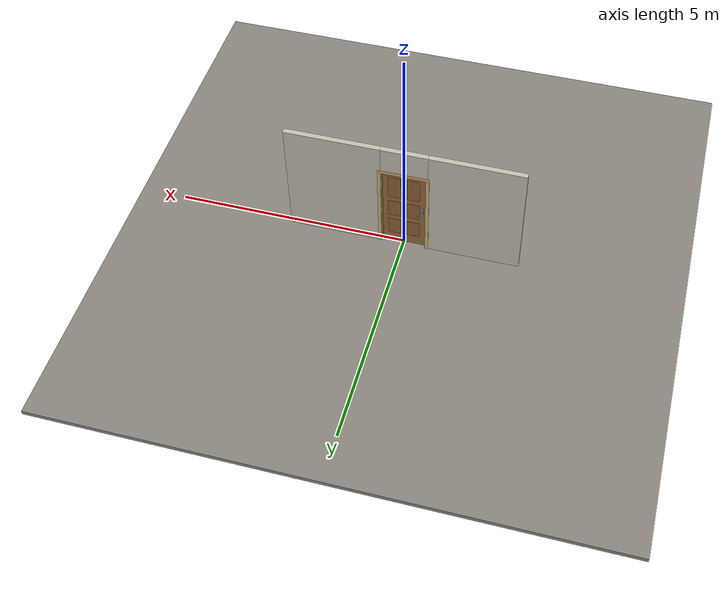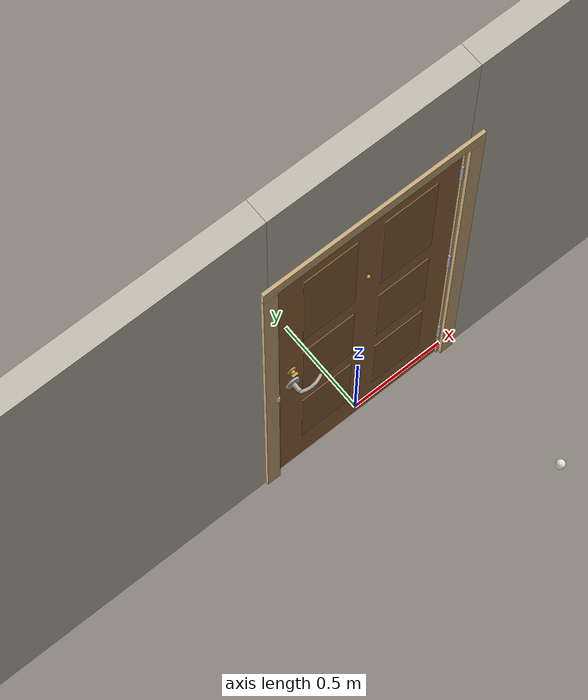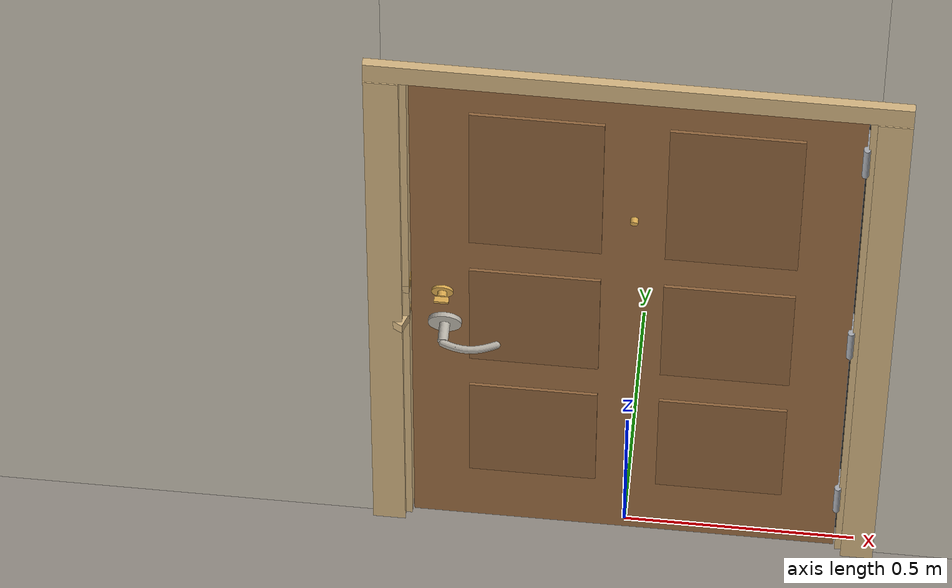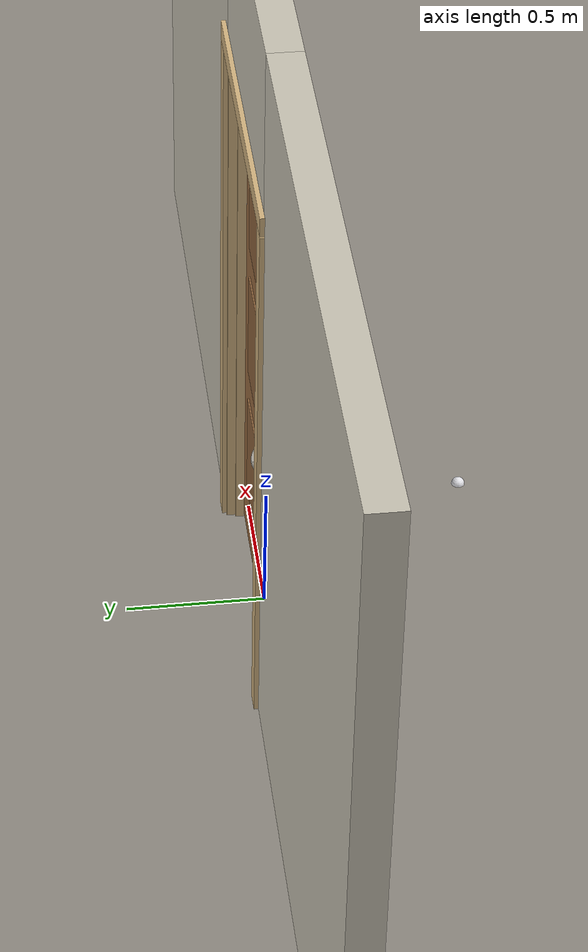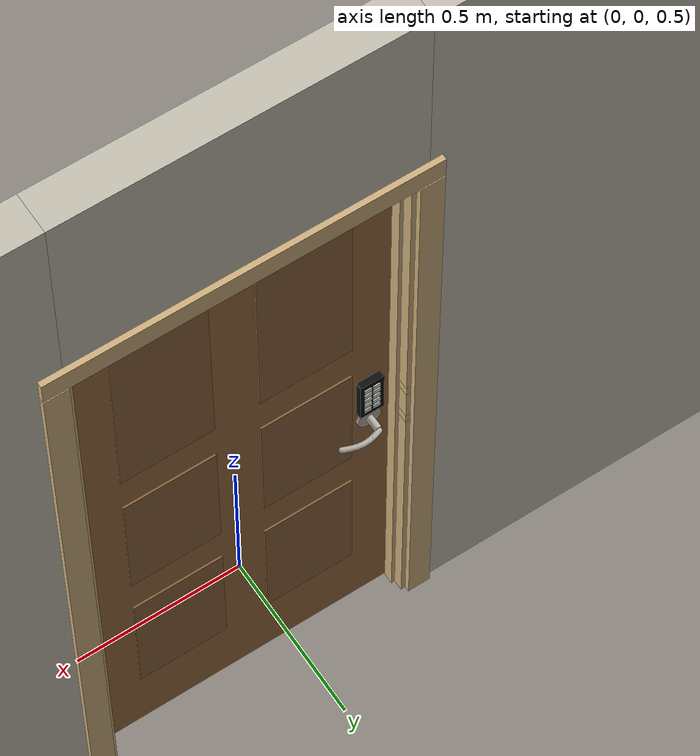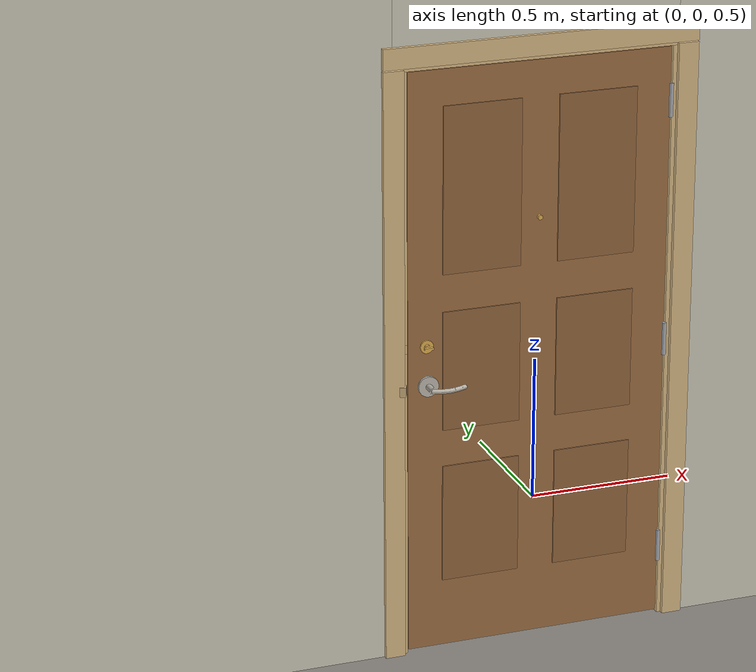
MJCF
<?xml version="1.0" ?>
<mujoco model="db0601_swing_single_full">
  <compiler angle="radian" meshdir="../../hardware" texturedir="../../textures" autolimits="true" inertiafromgeom="false"/>
  <option timestep="0.002" integrator="implicitfast" cone="elliptic" impratio="10" noslip_iterations="3">
    <flag multiccd="enable"/>
  </option>
  <size memory="16M"/>
  <default>
    <geom condim="4" solref="0.005 1" solimp="0.95 0.99 0.001"/>
    <joint solreflimit="0.005 1" solimplimit="0.95 0.99 0.001"/>
    <tendon solreflimit="0.005 1"/>
    <equality solref="0.002 1"/>
  </default>
  <visual>
    <headlight ambient="0.4 0.4 0.4" diffuse="0.7 0.7 0.7" specular="0.2 0.2 0.2"/>
    <quality shadowsize="4096"/>
    <map znear="0.01" zfar="60"/>
  </visual>
  <asset>
    <mesh name="hinge_e22b26c0c1" file="hinge_e22b26c0c1.obj"/>
    <mesh name="hinge_jamb_e1d088f8dc" file="hinge_jamb_e1d088f8dc.obj"/>
    <mesh name="keypad_body_3b2d063948" file="keypad_body_3b2d063948.obj"/>
    <mesh name="lever_a61139b160" file="lever_a61139b160.obj"/>
    <mesh name="peephole_f829311a59" file="peephole_f829311a59.obj"/>
    <mesh name="thumbturn_eb5c9899a3" file="thumbturn_eb5c9899a3.obj"/>
    <material name="mat_floor" rgba="0.55 0.53 0.5 1" specular="0.2" shininess="0.15" reflectance="0"/>
    <material name="mat_wall" rgba="0.78 0.76 0.7 1" specular="0.2" shininess="0.1" reflectance="0"/>
    <material name="mat_leaf" rgba="0.6 0.42 0.25 1" specular="0.2" shininess="0.6" reflectance="0"/>
    <material name="mat_leaf_panel" rgba="0.552 0.386 0.23 1" specular="0.2" shininess="0.6" reflectance="0"/>
    <material name="mat_hinge" rgba="0.65 0.66 0.68 1" specular="0.74" shininess="0.5" reflectance="0.36"/>
    <material name="mat_op_nickel_satin" rgba="0.72 0.7 0.66 1" specular="0.8" shininess="0.65" reflectance="0.4"/>
    <material name="mat_trim" rgba="0.85 0.66 0.3 1" specular="0.8" shininess="0.75" reflectance="0.4"/>
    <material name="mat_keypad" rgba="0.05 0.05 0.05 1" specular="0.38" shininess="0.3" reflectance="0.12"/>
    <material name="mat_key" rgba="0.85 0.85 0.82 1" specular="0.2" shininess="0.5" reflectance="0"/>
    <material name="mat_bolt" rgba="0.85 0.66 0.3 1" specular="0.8" shininess="0.75" reflectance="0.4"/>
    <material name="mat_deadbolt" rgba="0.85 0.66 0.3 1" specular="0.8" shininess="0.75" reflectance="0.4"/>
    <material name="mat_frame" rgba="0.82 0.7 0.5 1" specular="0.2" shininess="0.45" reflectance="0"/>
    <material name="mat_seal" rgba="0.1 0.1 0.1 1" specular="0.2" shininess="0.1" reflectance="0"/>
    <material name="mat_peephole" rgba="0.85 0.66 0.3 1" specular="0.8" shininess="0.75" reflectance="0.4"/>
    <material name="mat_stop" rgba="0.9 0.9 0.92 1" specular="0.8" shininess="0.9" reflectance="0.4"/>
    <texture name="skybox" type="skybox" builtin="gradient" rgb1="0.6 0.7 0.85" rgb2="0.9 0.92 0.95" width="256" height="256"/>
  </asset>
  <worldbody>
    <light name="sun" pos="1.5 -2.5 4" dir="-0.3 0.5 -0.8" directional="true" diffuse="0.8 0.8 0.8" specular="0.3 0.3 0.3" castshadow="true"/>
    <light name="fill" pos="-1.5 2.5 3" dir="0.3 -0.5 -0.7" directional="true" diffuse="0.35 0.35 0.4" castshadow="false"/>
    <camera name="robot_view" pos="0 -2.513687 1.734312" xyaxes="1 0 0 0 0.26963 0.962964" fovy="52"/>
    <camera name="far_view" pos="0 2.570688 1.734312" xyaxes="-1 0 0 0 -0.26963 0.962964" fovy="52"/>
    <camera name="iso" pos="-1.932062 -2.106937 2.141063" xyaxes="0.741536 -0.670913 0 0.242917 0.268487 0.932151" fovy="46"/>
    <camera name="detail_handle" pos="-0.1169 -0.877 1.245" xyaxes="0.97561 0.219512 0 -0.070934 0.315262 0.94635" fovy="38"/>
    <geom name="floor" type="box" size="6 6 0.05" pos="0 0 -0.05" material="mat_floor" group="0" contype="1" conaffinity="1" friction="0.8 0.005 0.0001" density="2400"/>
    <geom name="wall_left" type="box" size="0.99525 0.0575 1.35" pos="-1.50475 0.0285 1.35" material="mat_wall" group="0" contype="1" conaffinity="1" friction="0.6 0.005 0.0001" density="800"/>
    <geom name="wall_right" type="box" size="1.01025 0.0575 1.35" pos="1.48975 0.0285 1.35" material="mat_wall" group="0" contype="1" conaffinity="1" friction="0.6 0.005 0.0001" density="800"/>
    <geom name="wall_header" type="box" size="0.4945 0.0575 0.303" pos="-0.015 0.0285 2.397" material="mat_wall" group="0" contype="1" conaffinity="1" friction="0.6 0.005 0.0001" density="800"/>
    <geom name="hinge_0_jamb" type="mesh" mesh="hinge_jamb_e1d088f8dc" pos="0.4575 -0.029 0.259" quat="0 0 1 0" material="mat_hinge" group="1" contype="0" conaffinity="0" density="7850"/>
    <geom name="hinge_1_jamb" type="mesh" mesh="hinge_jamb_e1d088f8dc" pos="0.4575 -0.029 1.025" quat="0 0 1 0" material="mat_hinge" group="1" contype="0" conaffinity="0" density="7850"/>
    <geom name="hinge_2_jamb" type="mesh" mesh="hinge_jamb_e1d088f8dc" pos="0.4575 -0.029 1.861" quat="0 0 1 0" material="mat_hinge" group="1" contype="0" conaffinity="0" density="7850"/>
    <geom name="leaf_deadbolt_strike_b" type="box" size="0.0155 0.003 0.0005" pos="-0.46 0 1.0865" quat="0.5 0.5 0.5 0.5" material="mat_deadbolt" group="1" contype="0" conaffinity="0" density="7800"/>
    <geom name="leaf_deadbolt_strike_l" type="box" size="0.003 0.0155 0.0005" pos="-0.46 -0.0125 1.105" quat="0.5 0.5 0.5 0.5" material="mat_deadbolt" group="1" contype="0" conaffinity="0" density="7800"/>
    <geom name="leaf_deadbolt_strike_t" type="box" size="0.0155 0.003 0.0005" pos="-0.46 0 1.1235" quat="0.5 0.5 0.5 0.5" material="mat_deadbolt" group="1" contype="0" conaffinity="0" density="7800"/>
    <geom name="leaf_deadbolt_strike_r" type="box" size="0.003 0.0155 0.0005" pos="-0.46 0.0125 1.105" quat="0.5 0.5 0.5 0.5" material="mat_deadbolt" group="1" contype="0" conaffinity="0" density="7800"/>
    <geom name="jamb_hinge" type="box" size="0.0095 0.0575 1.0225" pos="0.47 0.0285 1.0225" material="mat_frame" group="0" contype="1" conaffinity="1" friction="0.6 0.005 0.0001" density="400"/>
    <geom name="strike_965_wall_n" type="box" size="0.0245 0.039075 0.0167" pos="-0.485 0.046925 0.965" material="mat_frame" group="0" contype="1" conaffinity="1" friction="0.6 0.005 0.0001" density="400"/>
    <geom name="strike_965_wall_p" type="box" size="0.0245 0.008 0.0167" pos="-0.485 -0.01585 0.965" material="mat_frame" group="0" contype="1" conaffinity="1" friction="0.6 0.005 0.0001" density="400"/>
    <geom name="strike_965_ramp" type="box" size="0.0245 0.01649 0.0167" pos="-0.489636 -0.028673 0.965" quat="0.977148 0 0 -0.212558" material="mat_frame" group="0" contype="1" conaffinity="1" friction="0.12 0.005 0.0001" density="400"/>
    <geom name="strike_965_back" type="box" size="0.01615 0.00785 0.0167" pos="-0.49335 0 0.965" material="mat_frame" group="0" contype="1" conaffinity="1" friction="0.6 0.005 0.0001" density="400"/>
    <geom name="strike_1105_wall_n" type="box" size="0.0245 0.03825 0.0155" pos="-0.485 0.04775 1.105" material="mat_frame" group="0" contype="1" conaffinity="1" friction="0.6 0.005 0.0001" density="400"/>
    <geom name="strike_1105_wall_p" type="box" size="0.0245 0.00975 0.0155" pos="-0.485 -0.01925 1.105" material="mat_frame" group="0" contype="1" conaffinity="1" friction="0.6 0.005 0.0001" density="400"/>
    <geom name="strike_1105_back" type="box" size="0.0098 0.0095 0.0155" pos="-0.4997 0 1.105" material="mat_frame" group="0" contype="1" conaffinity="1" friction="0.6 0.005 0.0001" density="400"/>
    <geom name="jamb_strike_0" type="box" size="0.0245 0.0575 0.47415" pos="-0.485 0.0285 0.47415" material="mat_frame" group="0" contype="1" conaffinity="1" friction="0.6 0.005 0.0001" density="400"/>
    <geom name="jamb_strike_1" type="box" size="0.0245 0.0575 0.0539" pos="-0.485 0.0285 1.0356" material="mat_frame" group="0" contype="1" conaffinity="1" friction="0.6 0.005 0.0001" density="400"/>
    <geom name="jamb_strike_2" type="box" size="0.0245 0.0575 0.46225" pos="-0.485 0.0285 1.58275" material="mat_frame" group="0" contype="1" conaffinity="1" friction="0.6 0.005 0.0001" density="400"/>
    <geom name="jamb_head" type="box" size="0.4945 0.0575 0.0095" pos="-0.015 0.0285 2.0545" material="mat_frame" group="0" contype="1" conaffinity="1" friction="0.6 0.005 0.0001" density="400"/>
    <geom name="head_stud" type="box" size="0.4945 0.0575 0.015" pos="-0.015 0.0285 2.079" material="mat_wall" group="0" contype="1" conaffinity="1" friction="0.6 0.005 0.0001" density="500"/>
    <geom name="stop_hinge" type="box" size="0.0055 0.016 1.0225" pos="0.455 0.0385 1.0225" material="mat_frame" group="0" contype="1" conaffinity="1" friction="0.6 0.005 0.0001" density="400"/>
    <geom name="stop_strike" type="box" size="0.0055 0.016 1.0225" pos="-0.455 0.0385 1.0225" material="mat_frame" group="0" contype="1" conaffinity="1" friction="0.6 0.005 0.0001" density="400"/>
    <geom name="stop_head" type="box" size="0.4605 0.016 0.0055" pos="0 0.0385 2.0395" material="mat_frame" group="0" contype="1" conaffinity="1" friction="0.6 0.005 0.0001" density="400"/>
    <geom name="seal_hinge" type="box" size="0.004 0.002 1.0225" pos="0.4575 0.024 1.0225" material="mat_seal" group="1" contype="0" conaffinity="0" density="1100"/>
    <geom name="seal_strike" type="box" size="0.004 0.002 1.0225" pos="-0.4575 0.024 1.0225" material="mat_seal" group="1" contype="0" conaffinity="0" density="1100"/>
    <geom name="seal_head" type="box" size="0.4405 0.002 0.008" pos="0 0.024 2.033" material="mat_seal" group="1" contype="0" conaffinity="0" density="1100"/>
    <geom name="casing_l_n" type="box" size="0.035 0.008 1.032" pos="-0.5095 -0.037 1.0225" material="mat_frame" group="2" contype="0" conaffinity="0" density="400"/>
    <geom name="casing_r_n" type="box" size="0.035 0.008 1.032" pos="0.5095 -0.037 1.0225" material="mat_frame" group="2" contype="0" conaffinity="0" density="400"/>
    <geom name="casing_h_n" type="box" size="0.5445 0.008 0.035" pos="0 -0.037 2.094" material="mat_frame" group="2" contype="0" conaffinity="0" density="400"/>
    <geom name="casing_l_p" type="box" size="0.035 0.008 1.032" pos="-0.5095 0.094 1.0225" material="mat_frame" group="2" contype="0" conaffinity="0" density="400"/>
    <geom name="casing_r_p" type="box" size="0.035 0.008 1.032" pos="0.5095 0.094 1.0225" material="mat_frame" group="2" contype="0" conaffinity="0" density="400"/>
    <geom name="casing_h_p" type="box" size="0.5445 0.008 0.035" pos="0 0.094 2.094" material="mat_frame" group="2" contype="0" conaffinity="0" density="400"/>
    <geom name="floor_stop_dome" type="sphere" size="0.025" pos="0.545135 -0.801201 0" material="mat_stop" group="0" contype="1" conaffinity="1" friction="0.6 0.005 0.0001" density="7000"/>
    <site name="approach_point" pos="0 -1.5 0" quat="1 0 0 0" size="0.05" rgba="0.2 0.9 0.2 0.5" group="4"/>
    <site name="goal_point" pos="0 1.5 0" quat="1 0 0 0" size="0.05" rgba="0.2 0.9 0.2 0.5" group="4"/>
    <site name="door_plane_center" pos="0 0 1.0225" quat="1 0 0 0" size="0.02" rgba="0.2 0.9 0.2 0.5" group="4"/>
    <body name="leaf" pos="0.4605 0 0">
      <inertial pos="-0.457136 -0.000001 1.025971" mass="55.270219" quat="0.500674 0.499245 -0.500747 0.499331" diaginertia="3.996312931 18.932883605 22.91004662"/>
      <joint name="leaf_hinge" type="hinge" axis="0 0 1" pos="-0.003 -0.029 0" limited="true" range="0 1.658063" solreflimit="0.02 1" damping="0.30611" frictionloss="6.791938" armature="0.02"/>
      <geom name="leaf_slab" type="box" size="0.457 0.022 1.016" pos="-0.46 0 1.025" material="mat_leaf" group="0" contype="1" conaffinity="1" friction="0.3 0.005 0.0001" density="1"/>
      <geom name="leaf_panel_0_n" type="box" size="0.13573 0.003 0.209032" pos="-0.25927 -0.025 0.461552" material="mat_leaf_panel" group="1" contype="0" conaffinity="0" density="1"/>
      <geom name="leaf_panel_0_p" type="box" size="0.13573 0.003 0.209032" pos="-0.25927 0.025 0.461552" material="mat_leaf_panel" group="1" contype="0" conaffinity="0" density="1"/>
      <geom name="leaf_panel_1_n" type="box" size="0.13573 0.003 0.209032" pos="-0.66073 -0.025 0.461552" material="mat_leaf_panel" group="1" contype="0" conaffinity="0" density="1"/>
      <geom name="leaf_panel_1_p" type="box" size="0.13573 0.003 0.209032" pos="-0.66073 0.025 0.461552" material="mat_leaf_panel" group="1" contype="0" conaffinity="0" density="1"/>
      <geom name="leaf_panel_2_n" type="box" size="0.13573 0.003 0.209032" pos="-0.25927 -0.025 1.009616" material="mat_leaf_panel" group="1" contype="0" conaffinity="0" density="1"/>
      <geom name="leaf_panel_2_p" type="box" size="0.13573 0.003 0.209032" pos="-0.25927 0.025 1.009616" material="mat_leaf_panel" group="1" contype="0" conaffinity="0" density="1"/>
      <geom name="leaf_panel_3_n" type="box" size="0.13573 0.003 0.209032" pos="-0.66073 -0.025 1.009616" material="mat_leaf_panel" group="1" contype="0" conaffinity="0" density="1"/>
      <geom name="leaf_panel_3_p" type="box" size="0.13573 0.003 0.209032" pos="-0.66073 0.025 1.009616" material="mat_leaf_panel" group="1" contype="0" conaffinity="0" density="1"/>
      <geom name="leaf_panel_4_n" type="box" size="0.13573 0.003 0.285376" pos="-0.25927 -0.025 1.634024" material="mat_leaf_panel" group="1" contype="0" conaffinity="0" density="1"/>
      <geom name="leaf_panel_4_p" type="box" size="0.13573 0.003 0.285376" pos="-0.25927 0.025 1.634024" material="mat_leaf_panel" group="1" contype="0" conaffinity="0" density="1"/>
      <geom name="leaf_panel_5_n" type="box" size="0.13573 0.003 0.285376" pos="-0.66073 -0.025 1.634024" material="mat_leaf_panel" group="1" contype="0" conaffinity="0" density="1"/>
      <geom name="leaf_panel_5_p" type="box" size="0.13573 0.003 0.285376" pos="-0.66073 0.025 1.634024" material="mat_leaf_panel" group="1" contype="0" conaffinity="0" density="1"/>
      <geom name="hinge_0" type="mesh" mesh="hinge_e22b26c0c1" pos="-0.003 -0.029 0.259" quat="0 0 1 0" material="mat_hinge" group="1" contype="0" conaffinity="0" density="7850"/>
      <geom name="hinge_1" type="mesh" mesh="hinge_e22b26c0c1" pos="-0.003 -0.029 1.025" quat="0 0 1 0" material="mat_hinge" group="1" contype="0" conaffinity="0" density="7850"/>
      <geom name="hinge_2" type="mesh" mesh="hinge_e22b26c0c1" pos="-0.003 -0.029 1.861" quat="0 0 1 0" material="mat_hinge" group="1" contype="0" conaffinity="0" density="7850"/>
      <geom name="leaf_keypad_body" type="mesh" mesh="keypad_body_3b2d063948" pos="-0.847 0.022 1.085" quat="0 0 0.707107 0.707107" material="mat_keypad" group="0" contype="1" conaffinity="1" friction="0.6 0.005 0.0001" density="2000"/>
      <geom name="leaf_latch_bolt_faceplate" type="box" size="0.0006 0.01235 0.0267" pos="-0.9164 0 0.965" material="mat_bolt" group="1" contype="0" conaffinity="0" density="8500"/>
      <geom name="leaf_deadbolt_faceplate" type="box" size="0.0006 0.014 0.0245" pos="-0.9164 0 1.105" material="mat_deadbolt" group="1" contype="0" conaffinity="0" density="8500"/>
      <geom name="peephole" type="mesh" mesh="peephole_f829311a59" pos="-0.46 -0.022 1.509" quat="0 0 -0.707107 0.707107" material="mat_peephole" group="2" contype="0" conaffinity="0" density="8500"/>
      <site name="leaf_edge_mid" pos="-0.917 0 1.016" quat="1 0 0 0" size="0.02" rgba="0.2 0.9 0.2 0.5" group="4"/>
      <body name="leaf_handle" pos="-0.847 0 0.965">
        <inertial pos="0.023482 0 0" mass="0.873269" quat="0.707107 0 0 -0.707107" diaginertia="0.001231078 0.003255488 0.004320455"/>
        <joint name="leaf_handle_hinge" type="hinge" axis="0 1 0" limited="true" range="0 0.87" damping="0.216449" frictionloss="0.043602" stiffness="1" springref="-0.375569" armature="0.01"/>
        <geom name="leaf_handle_spindle" type="cylinder" size="0.006 0.03" pos="0 0 0" quat="0.707107 -0.707107 0 0" material="mat_op_nickel_satin" group="1" contype="0" conaffinity="0" density="7850"/>
        <geom name="leaf_handle_lever_n" type="mesh" mesh="lever_a61139b160" pos="0 -0.022 0" quat="0 0 -0.707107 0.707107" material="mat_op_nickel_satin" group="1" contype="0" conaffinity="0" density="3000"/>
        <geom name="leaf_handle_lever_col_n" type="capsule" size="0.008 0.048" pos="0.056 -0.077 0" quat="0.707107 0 0.707107 0" material="mat_op_nickel_satin" group="3" contype="1" conaffinity="1" rgba="0.8 0.3 0.3 0.25" friction="0.7 0.01 0.0001" density="3000"/>
        <geom name="leaf_handle_hub_col_n" type="cylinder" size="0.012 0.022" pos="0 -0.052 0" quat="0.707107 -0.707107 0 0" material="mat_op_nickel_satin" group="3" contype="1" conaffinity="1" rgba="0.8 0.3 0.3 0.25" friction="0.6 0.005 0.0001" density="3000"/>
        <geom name="leaf_handle_lever_p" type="mesh" mesh="lever_a61139b160" pos="0 0.022 0" quat="0 0 0.707107 0.707107" material="mat_op_nickel_satin" group="1" contype="0" conaffinity="0" density="3000"/>
        <geom name="leaf_handle_lever_col_p" type="capsule" size="0.008 0.048" pos="0.056 0.077 0" quat="0.707107 0 0.707107 0" material="mat_op_nickel_satin" group="3" contype="1" conaffinity="1" rgba="0.8 0.3 0.3 0.25" friction="0.7 0.01 0.0001" density="3000"/>
        <geom name="leaf_handle_hub_col_p" type="cylinder" size="0.012 0.022" pos="0 0.052 0" quat="0.707107 -0.707107 0 0" material="mat_op_nickel_satin" group="3" contype="1" conaffinity="1" rgba="0.8 0.3 0.3 0.25" friction="0.6 0.005 0.0001" density="3000"/>
        <site name="leaf_handle_grip_n" pos="0.0896 -0.077 0" quat="1 0 0 0" size="0.012" rgba="0.2 0.9 0.2 0.5" group="4"/>
        <site name="leaf_handle_grip_p" pos="0.0896 0.077 0" quat="1 0 0 0" size="0.012" rgba="0.2 0.9 0.2 0.5" group="4"/>
      </body>
      <body name="leaf_keypad_key_1" pos="-0.834 0.042 1.133">
        <inertial pos="0 0.0015 0" mass="0.001008" quat="0 0 0.707107 0.707107" diaginertia="0.000000017 0.000000034 0.00000005"/>
        <joint name="leaf_keypad_key_1_slide" type="slide" axis="0 -1 0" limited="true" range="0 0.0015" damping="14" frictionloss="0.05" stiffness="1000" springref="-0.0015" armature="0.1"/>
        <geom name="leaf_keypad_key_1_geom" type="box" size="0.01 0.0015 0.007" pos="0 0.0015 0" material="mat_key" group="0" contype="1" conaffinity="1" friction="0.6 0.005 0.0001" density="1200"/>
        <site name="leaf_keypad_key_1_press" pos="0 0.005 0" quat="1 0 0 0" size="0.008" rgba="0.2 0.9 0.2 0.5" group="4"/>
      </body>
      <body name="leaf_keypad_key_2" pos="-0.86 0.042 1.133">
        <inertial pos="0 0.0015 0" mass="0.001008" quat="0 0 0.707107 0.707107" diaginertia="0.000000017 0.000000034 0.00000005"/>
        <joint name="leaf_keypad_key_2_slide" type="slide" axis="0 -1 0" limited="true" range="0 0.0015" damping="14" frictionloss="0.05" stiffness="1000" springref="-0.0015" armature="0.1"/>
        <geom name="leaf_keypad_key_2_geom" type="box" size="0.01 0.0015 0.007" pos="0 0.0015 0" material="mat_key" group="0" contype="1" conaffinity="1" friction="0.6 0.005 0.0001" density="1200"/>
        <site name="leaf_keypad_key_2_press" pos="0 0.005 0" quat="1 0 0 0" size="0.008" rgba="0.2 0.9 0.2 0.5" group="4"/>
      </body>
      <body name="leaf_keypad_key_3" pos="-0.834 0.042 1.109">
        <inertial pos="0 0.0015 0" mass="0.001008" quat="0 0 0.707107 0.707107" diaginertia="0.000000017 0.000000034 0.00000005"/>
        <joint name="leaf_keypad_key_3_slide" type="slide" axis="0 -1 0" limited="true" range="0 0.0015" damping="14" frictionloss="0.05" stiffness="1000" springref="-0.0015" armature="0.1"/>
        <geom name="leaf_keypad_key_3_geom" type="box" size="0.01 0.0015 0.007" pos="0 0.0015 0" material="mat_key" group="0" contype="1" conaffinity="1" friction="0.6 0.005 0.0001" density="1200"/>
        <site name="leaf_keypad_key_3_press" pos="0 0.005 0" quat="1 0 0 0" size="0.008" rgba="0.2 0.9 0.2 0.5" group="4"/>
      </body>
      <body name="leaf_keypad_key_4" pos="-0.86 0.042 1.109">
        <inertial pos="0 0.0015 0" mass="0.001008" quat="0 0 0.707107 0.707107" diaginertia="0.000000017 0.000000034 0.00000005"/>
        <joint name="leaf_keypad_key_4_slide" type="slide" axis="0 -1 0" limited="true" range="0 0.0015" damping="14" frictionloss="0.05" stiffness="1000" springref="-0.0015" armature="0.1"/>
        <geom name="leaf_keypad_key_4_geom" type="box" size="0.01 0.0015 0.007" pos="0 0.0015 0" material="mat_key" group="0" contype="1" conaffinity="1" friction="0.6 0.005 0.0001" density="1200"/>
        <site name="leaf_keypad_key_4_press" pos="0 0.005 0" quat="1 0 0 0" size="0.008" rgba="0.2 0.9 0.2 0.5" group="4"/>
      </body>
      <body name="leaf_keypad_key_5" pos="-0.834 0.042 1.085">
        <inertial pos="0 0.0015 0" mass="0.001008" quat="0 0 0.707107 0.707107" diaginertia="0.000000017 0.000000034 0.00000005"/>
        <joint name="leaf_keypad_key_5_slide" type="slide" axis="0 -1 0" limited="true" range="0 0.0015" damping="14" frictionloss="0.05" stiffness="1000" springref="-0.0015" armature="0.1"/>
        <geom name="leaf_keypad_key_5_geom" type="box" size="0.01 0.0015 0.007" pos="0 0.0015 0" material="mat_key" group="0" contype="1" conaffinity="1" friction="0.6 0.005 0.0001" density="1200"/>
        <site name="leaf_keypad_key_5_press" pos="0 0.005 0" quat="1 0 0 0" size="0.008" rgba="0.2 0.9 0.2 0.5" group="4"/>
      </body>
      <body name="leaf_keypad_key_6" pos="-0.86 0.042 1.085">
        <inertial pos="0 0.0015 0" mass="0.001008" quat="0 0 0.707107 0.707107" diaginertia="0.000000017 0.000000034 0.00000005"/>
        <joint name="leaf_keypad_key_6_slide" type="slide" axis="0 -1 0" limited="true" range="0 0.0015" damping="14" frictionloss="0.05" stiffness="1000" springref="-0.0015" armature="0.1"/>
        <geom name="leaf_keypad_key_6_geom" type="box" size="0.01 0.0015 0.007" pos="0 0.0015 0" material="mat_key" group="0" contype="1" conaffinity="1" friction="0.6 0.005 0.0001" density="1200"/>
        <site name="leaf_keypad_key_6_press" pos="0 0.005 0" quat="1 0 0 0" size="0.008" rgba="0.2 0.9 0.2 0.5" group="4"/>
      </body>
      <body name="leaf_keypad_key_7" pos="-0.834 0.042 1.061">
        <inertial pos="0 0.0015 0" mass="0.001008" quat="0 0 0.707107 0.707107" diaginertia="0.000000017 0.000000034 0.00000005"/>
        <joint name="leaf_keypad_key_7_slide" type="slide" axis="0 -1 0" limited="true" range="0 0.0015" damping="14" frictionloss="0.05" stiffness="1000" springref="-0.0015" armature="0.1"/>
        <geom name="leaf_keypad_key_7_geom" type="box" size="0.01 0.0015 0.007" pos="0 0.0015 0" material="mat_key" group="0" contype="1" conaffinity="1" friction="0.6 0.005 0.0001" density="1200"/>
        <site name="leaf_keypad_key_7_press" pos="0 0.005 0" quat="1 0 0 0" size="0.008" rgba="0.2 0.9 0.2 0.5" group="4"/>
      </body>
      <body name="leaf_keypad_key_8" pos="-0.86 0.042 1.061">
        <inertial pos="0 0.0015 0" mass="0.001008" quat="0 0 0.707107 0.707107" diaginertia="0.000000017 0.000000034 0.00000005"/>
        <joint name="leaf_keypad_key_8_slide" type="slide" axis="0 -1 0" limited="true" range="0 0.0015" damping="14" frictionloss="0.05" stiffness="1000" springref="-0.0015" armature="0.1"/>
        <geom name="leaf_keypad_key_8_geom" type="box" size="0.01 0.0015 0.007" pos="0 0.0015 0" material="mat_key" group="0" contype="1" conaffinity="1" friction="0.6 0.005 0.0001" density="1200"/>
        <site name="leaf_keypad_key_8_press" pos="0 0.005 0" quat="1 0 0 0" size="0.008" rgba="0.2 0.9 0.2 0.5" group="4"/>
      </body>
      <body name="leaf_keypad_key_9" pos="-0.834 0.042 1.037">
        <inertial pos="0 0.0015 0" mass="0.001008" quat="0 0 0.707107 0.707107" diaginertia="0.000000017 0.000000034 0.00000005"/>
        <joint name="leaf_keypad_key_9_slide" type="slide" axis="0 -1 0" limited="true" range="0 0.0015" damping="14" frictionloss="0.05" stiffness="1000" springref="-0.0015" armature="0.1"/>
        <geom name="leaf_keypad_key_9_geom" type="box" size="0.01 0.0015 0.007" pos="0 0.0015 0" material="mat_key" group="0" contype="1" conaffinity="1" friction="0.6 0.005 0.0001" density="1200"/>
        <site name="leaf_keypad_key_9_press" pos="0 0.005 0" quat="1 0 0 0" size="0.008" rgba="0.2 0.9 0.2 0.5" group="4"/>
      </body>
      <body name="leaf_keypad_key_0" pos="-0.86 0.042 1.037">
        <inertial pos="0 0.0015 0" mass="0.001008" quat="0 0 0.707107 0.707107" diaginertia="0.000000017 0.000000034 0.00000005"/>
        <joint name="leaf_keypad_key_0_slide" type="slide" axis="0 -1 0" limited="true" range="0 0.0015" damping="14" frictionloss="0.05" stiffness="1000" springref="-0.0015" armature="0.1"/>
        <geom name="leaf_keypad_key_0_geom" type="box" size="0.01 0.0015 0.007" pos="0 0.0015 0" material="mat_key" group="0" contype="1" conaffinity="1" friction="0.6 0.005 0.0001" density="1200"/>
        <site name="leaf_keypad_key_0_press" pos="0 0.005 0" quat="1 0 0 0" size="0.008" rgba="0.2 0.9 0.2 0.5" group="4"/>
      </body>
      <body name="leaf_latch_bolt" pos="-0.917 0 0.965">
        <inertial pos="0.00865 0 0" mass="0.041419" quat="0.92388 0.382683 0 0" diaginertia="0.000000798 0.000005598 0.000005598"/>
        <joint name="leaf_latch_bolt_slide" type="slide" axis="1 0 0" limited="true" range="0 0.0127" damping="2" frictionloss="0.3" stiffness="300" springref="-0.008333" armature="0.1"/>
        <geom name="leaf_latch_bolt_capsule" type="capsule" size="0.00635 0.015" pos="0.00865 0 0" quat="0.707107 0 -0.707107 0" material="mat_bolt" group="0" contype="1" conaffinity="1" friction="0.2 0.005 0.0001" density="8500"/>
      </body>
      <body name="leaf_deadbolt" pos="-0.917 0 1.105">
        <inertial pos="0.0277 0 0" mass="0.18836" quat="0 0 0.707107 0.707107" diaginertia="0.000013829 0.000052194 0.000057986"/>
        <joint name="leaf_deadbolt_slide" type="slide" axis="1 0 0" limited="true" range="0 0.0254" damping="5" frictionloss="1.5" armature="0.1" ref="0.0254"/>
        <geom name="leaf_deadbolt_box" type="box" size="0.0277 0.008 0.0125" pos="0.0277 0 0" material="mat_deadbolt" group="0" contype="1" conaffinity="1" friction="0.3 0.005 0.0001" density="8500"/>
      </body>
      <body name="leaf_deadbolt_thumbturn" pos="-0.852 -0.022 1.105">
        <inertial pos="0 -0.012928 0" mass="0.178946" quat="0.707107 0.000001 0.000001 0.707107" diaginertia="0.000026045 0.000026215 0.000032438"/>
        <joint name="leaf_deadbolt_thumbturn_hinge" type="hinge" axis="0 1 0" limited="true" range="0 1.5708" damping="0.05" frictionloss="0.3" armature="0.005" ref="1.5708"/>
        <geom name="leaf_deadbolt_thumbturn_mesh" type="mesh" mesh="thumbturn_eb5c9899a3" pos="0 0 0" quat="0.500001 0.500001 -0.499999 0.499999" material="mat_deadbolt" group="0" contype="1" conaffinity="1" friction="0.6 0.005 0.0001" density="7100"/>
        <geom name="leaf_deadbolt_thumbturn_col" type="box" size="0.006 0.012 0.016" pos="0 -0.02 0" quat="0.707105 0 0.707108 0" material="mat_deadbolt" group="3" contype="1" conaffinity="1" rgba="0.8 0.3 0.3 0.25" friction="0.6 0.005 0.0001" density="7100"/>
      </body>
    </body>
  </worldbody>
  <tendon>
    <fixed name="leaf_latch_bolt_coupling" limited="true" range="0 10">
      <joint joint="leaf_latch_bolt_slide" coef="1"/>
      <joint joint="leaf_handle_hinge" coef="-0.015679"/>
    </fixed>
  </tendon>
  <equality>
    <joint name="leaf_deadbolt_couple" joint1="leaf_deadbolt_slide" joint2="leaf_deadbolt_thumbturn_hinge" polycoef="0 0.01617 0 0 0" active="true"/>
  </equality>
  <contact>
    <exclude body1="leaf_deadbolt" body2="leaf_deadbolt_thumbturn"/>
  </contact>
  <sensor>
    <jointpos name="leaf_hinge_pos" joint="leaf_hinge"/>
    <jointvel name="leaf_hinge_vel" joint="leaf_hinge"/>
    <jointpos name="leaf_handle_hinge_pos" joint="leaf_handle_hinge"/>
    <jointvel name="leaf_handle_hinge_vel" joint="leaf_handle_hinge"/>
    <jointpos name="leaf_keypad_key_1_slide_pos" joint="leaf_keypad_key_1_slide"/>
    <jointvel name="leaf_keypad_key_1_slide_vel" joint="leaf_keypad_key_1_slide"/>
    <jointpos name="leaf_keypad_key_2_slide_pos" joint="leaf_keypad_key_2_slide"/>
    <jointvel name="leaf_keypad_key_2_slide_vel" joint="leaf_keypad_key_2_slide"/>
    <jointpos name="leaf_keypad_key_3_slide_pos" joint="leaf_keypad_key_3_slide"/>
    <jointvel name="leaf_keypad_key_3_slide_vel" joint="leaf_keypad_key_3_slide"/>
    <jointpos name="leaf_keypad_key_4_slide_pos" joint="leaf_keypad_key_4_slide"/>
    <jointvel name="leaf_keypad_key_4_slide_vel" joint="leaf_keypad_key_4_slide"/>
    <jointpos name="leaf_keypad_key_5_slide_pos" joint="leaf_keypad_key_5_slide"/>
    <jointvel name="leaf_keypad_key_5_slide_vel" joint="leaf_keypad_key_5_slide"/>
    <jointpos name="leaf_keypad_key_6_slide_pos" joint="leaf_keypad_key_6_slide"/>
    <jointvel name="leaf_keypad_key_6_slide_vel" joint="leaf_keypad_key_6_slide"/>
    <jointpos name="leaf_keypad_key_7_slide_pos" joint="leaf_keypad_key_7_slide"/>
    <jointvel name="leaf_keypad_key_7_slide_vel" joint="leaf_keypad_key_7_slide"/>
    <jointpos name="leaf_keypad_key_8_slide_pos" joint="leaf_keypad_key_8_slide"/>
    <jointvel name="leaf_keypad_key_8_slide_vel" joint="leaf_keypad_key_8_slide"/>
    <jointpos name="leaf_keypad_key_9_slide_pos" joint="leaf_keypad_key_9_slide"/>
    <jointvel name="leaf_keypad_key_9_slide_vel" joint="leaf_keypad_key_9_slide"/>
    <jointpos name="leaf_keypad_key_0_slide_pos" joint="leaf_keypad_key_0_slide"/>
    <jointvel name="leaf_keypad_key_0_slide_vel" joint="leaf_keypad_key_0_slide"/>
    <jointpos name="leaf_latch_bolt_slide_pos" joint="leaf_latch_bolt_slide"/>
    <jointvel name="leaf_latch_bolt_slide_vel" joint="leaf_latch_bolt_slide"/>
    <jointpos name="leaf_deadbolt_slide_pos" joint="leaf_deadbolt_slide"/>
    <jointvel name="leaf_deadbolt_slide_vel" joint="leaf_deadbolt_slide"/>
    <jointpos name="leaf_deadbolt_thumbturn_hinge_pos" joint="leaf_deadbolt_thumbturn_hinge"/>
    <jointvel name="leaf_deadbolt_thumbturn_hinge_vel" joint="leaf_deadbolt_thumbturn_hinge"/>
  </sensor>
</mujoco>
